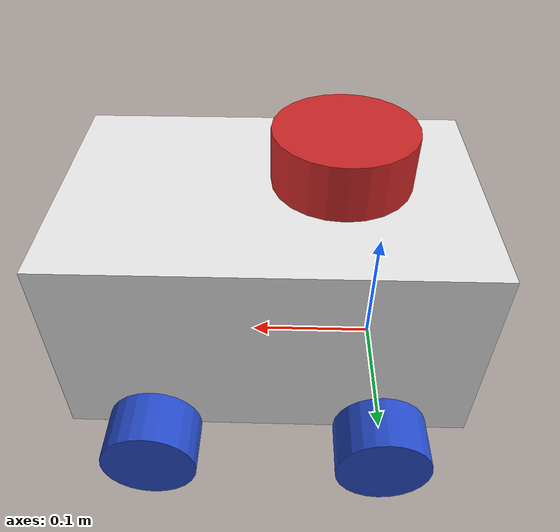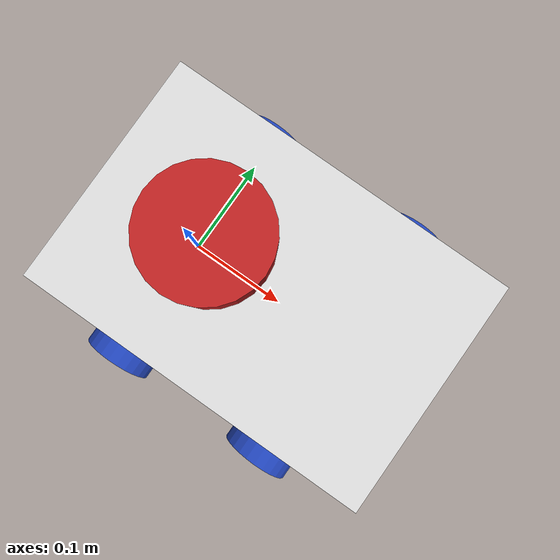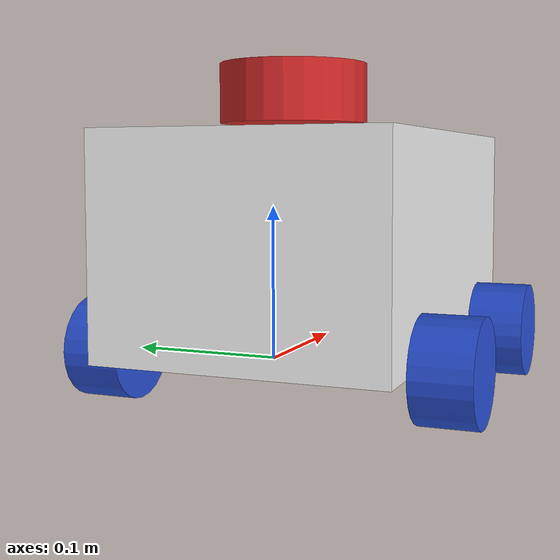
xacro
<?xml version="1.0"?>
<robot xmlns:xacro="http://www.ros.org/wiki/xacro"  name="robot">

    <!-- Example link -->
    <xacro:include filename="properties.xacro"/>
    <xacro:include filename="robot_core.xacro"/>
    <xacro:include filename="inertial_macros.xacro"/>
    <xacro:include filename="lidar.xacro"/>
    <xacro:include filename="ros2_control.xacro"/>
</robot>

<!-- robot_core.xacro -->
<robot xmlns:xacro="http://www.ros.org/wiki/xacro">

    <!-- Example link -->
    <xacro:include filename="inertial_macros.xacro"/>

    <!-- Example link -->
    <link name="base_link">
    </link>

    <joint name="base_link" type="fixed">
        <parent link="base_link"/>
        <child link="chassis"/>
        <origin xyz="-0.065 0 0"/>
    </joint>

    <!--esta huella es para el perimetro la informacion  este es mi volumen y puedo pasar -->
    <joint name="base_footprint_joint" type="fixed">
        <parent link="base_link"/>
        <child link="base_footprint"/>
        <origin xyz="0 0 -0.035"/>
    </joint>

    <link name="base_footprint">
    </link>

    <!-- chassis link -->
    <link name="chassis">
        <visual>
            <origin xyz="0.15 0 0.075"/>
            <geometry>
                <box size="0.3 0.2 0.15"/>
            </geometry>
            <material name="white"/>
        </visual>
        <collision>
            <origin xyz="0.15 0 0.075"/>
            <geometry>
                <box size="0.3 0.2 0.15"/>
            </geometry>
        </collision>
        <xacro:inertial_box mass="0.5" x="0.3" y="0.3" z="0.15">
            <origin xyz="0.15 0 0.075" rpy="0 0 0"/>
        </xacro:inertial_box>
    </link>
    <gazebo reference="chassis">
        <material>Gazebo/White</material>
    </gazebo>

    <!-- left wheel joint -->
    <joint name="left_wheel_joint" type="continuous">
        <parent link="base_link"/>
        <child link="left_wheel"/>
        <origin xyz="0 0.12 0" rpy="-${pi/2} 0 0"/>
        <axis xyz="0 0 1"/>
    </joint>

    <!-- left wheel link -->
    <link name="left_wheel">
        <visual>
            <geometry>
                <cylinder radius="0.035" length="0.04"/>
            </geometry>
            <material name="blue"/>
        </visual>
        <collision>
            <geometry>
                <sphere radius="0.035"/>
            </geometry>
        </collision>
        <xacro:inertial_cylinder mass="0.1" length="0.04" radius="0.035">
            <origin xyz="0 0.1 0" rpy="0 0 0"/>
        </xacro:inertial_cylinder>
    </link>
    <gazebo reference="left_wheel">
        <material>Gazebo/Blue</material>
    </gazebo>

    <!-- right wheel joint -->
    <joint name="right_wheel_joint" type="continuous">
        <parent link="base_link"/>
        <child link="right_wheel"/>
        <origin xyz="0 -0.12 0" rpy="${pi/2} 0 0"/>
        <axis xyz="0 0 -1"/>
    </joint>

    <!-- right wheel link -->
    <link name="right_wheel">
        <visual>
            <geometry>
                <cylinder radius="0.035" length="0.04"/>
            </geometry>
            <material name="blue"/>
        </visual>
        <collision>
            <geometry>
                <sphere radius="0.035"/>
            </geometry>
        </collision>
        <xacro:inertial_cylinder mass="0.1" length="0.04" radius="0.035">
            <origin xyz="0 0 0" rpy="0 0 0"/>
        </xacro:inertial_cylinder>
    </link>
    <gazebo reference="right_wheel">
        <material>Gazebo/Blue</material>
    </gazebo>

    <!-- front left wheel steer joint -->
    <joint name="left_wheel_steer_joint" type="revolute">
        <limit lower="-1" upper="1" effort="1" velocity="5"/>
        <parent link="chassis"/>
        <child link="left_wheel_steer"/>
        <origin xyz="0.235 0.12 0" rpy="0 0 0"/>
        <axis xyz="0 0 1"/>
    </joint>

    <!-- front left wheel steer link -->
    <link name="left_wheel_steer">
        <visual>
            <geometry>
                <cylinder radius="0.001" length="0.001"/>
            </geometry>
            <material name="blue"/>
        </visual>
        <collision>
            <geometry>
                <sphere radius="0.001"/>
            </geometry>
        </collision>
        <xacro:inertial_cylinder mass="0.001" length="0.001" radius="0.001">
            <origin xyz="0 0 0" rpy="0 0 0"/>
        </xacro:inertial_cylinder>
    </link>
    <gazebo reference="left_wheel_steer">
        <material>Gazebo/Blue</material>
    </gazebo>

    <!-- front left wheel joint -->
    <joint name="F_left_wheel_joint" type="continuous">
        <parent link="left_wheel_steer"/>
        <child link="F_left_wheel"/>
        <origin xyz="0 0 0" rpy="-${pi/2} 0 0"/>
        <axis xyz="0 0 1"/>
    </joint>

    <!-- front left wheel link -->
    <link name="F_left_wheel">
        <visual>
            <geometry>
                <cylinder radius="0.035" length="0.04"/>
            </geometry>
            <material name="blue"/>
        </visual>
        <collision>
            <geometry>
                <sphere radius="0.035"/>
            </geometry>
        </collision>
        <xacro:inertial_cylinder mass="0.1" length="0.04" radius="0.035">
            <origin xyz="0 0 0" rpy="0 0 0"/>
        </xacro:inertial_cylinder>
    </link>
    <gazebo reference="F_left_wheel">
        <material>Gazebo/Blue</material>
    </gazebo>

    <!-- front right wheel steer joint -->
    <joint name="right_wheel_steer_joint" type="revolute">
        <limit lower="-1" upper="1" effort="1" velocity="5"/>
        <parent link="chassis"/>
        <child link="right_wheel_steer"/>
        <origin xyz="0.235 -0.12 0" rpy="0 0 0"/>
        <axis xyz="0 0 1"/>
    </joint>

    <!-- front left wheel steer link -->
    <link name="right_wheel_steer">
        <visual>
            <geometry>
                <cylinder radius="0.001" length="0.001"/>
            </geometry>
            <material name="blue"/>
        </visual>
        <collision>
            <geometry>
                <sphere radius="0.001"/>
            </geometry>
        </collision>
        <xacro:inertial_cylinder mass="0.001" length="0.001" radius="0.001">
            <origin xyz="0 0 0" rpy="0 0 0"/>
        </xacro:inertial_cylinder>
    </link>
    <gazebo reference="right_wheel_steer">
        <material>Gazebo/Blue</material>
    </gazebo>

    <!-- front right wheel joint -->
    <joint name="F_right_wheel_joint" type="continuous">
        <parent link="right_wheel_steer"/>
        <child link="F_right_wheel"/>
        <origin xyz="0 0 0" rpy="${pi/2} 0 0"/>
        <axis xyz="0 0 1"/>
    </joint>

    <!-- front right wheel link -->
    <link name="F_right_wheel">
        <visual>
            <geometry>
                <cylinder radius="0.035" length="0.04"/>
            </geometry>
            <material name="blue"/>
        </visual>
        <collision>
            <geometry>
                <sphere radius="0.035"/>
            </geometry>
        </collision>
        <xacro:inertial_cylinder mass="0.1" length="0.04" radius="0.035">
            <origin xyz="0 0 0" rpy="0 0 0"/>
        </xacro:inertial_cylinder>
    </link>
    <gazebo reference="F_right_wheel">
        <material>Gazebo/Blue</material>
    </gazebo>

</robot>

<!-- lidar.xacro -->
<robot xmlns:xacro="http://www.ros.org/wiki/xacro">

    <!-- lidar joint -->
    <joint name="laser_joint" type="fixed">
        <parent link="chassis"/>
        <child link="laser_frame"/>
        <origin xyz="0.1 0 0.175" rpy="0 0 0"/>
    </joint>

    <!-- laser_frame -->
    <link name="laser_frame">
        <visual>
            <geometry>
                <cylinder radius="0.05" length="0.04"/>
            </geometry>
            <material name="red"/>
        </visual>
        <collision>
            <geometry>
                <cylinder radius="0.05" length="0.04"/>
            </geometry>
        </collision>
        <xacro:inertial_cylinder mass="0.1" length="0.04" radius="0.05">
            <origin xyz="0 0 0" rpy="0 0 0"/>
        </xacro:inertial_cylinder>
    </link>

    <gazebo reference="laser_frame">
        <material>Gazebo/Red</material>
        <sensor name="laser" type="ray">
            <pose>0 0 0 0 0 0</pose>
            <visualize>true</visualize> <!--aqui se le dice si quiero ver o no los rayos-->
            <update_rate>10</update_rate>
            <ray>
                <scan>
                    <horizontal>
                        <samples>360</samples>
                        <resolution>1</resolution>
                        <min_angle>-3.14</min_angle>
                        <max_angle>3.14</max_angle>
                    </horizontal>
                </scan>
                <range>
                    <min>0.3</min>
                    <max>12</max>
                    <resolution>0.01</resolution>
                </range>
            </ray>
            <plugin name="laser_controller" filename="libgazebo_ros_ray_sensor.so">
                <ros>
                    <argument>~/out:=scan</argument>
                </ros>
                <output_type>sensor_msgs/LaserScan</output_type>
                <frame_name>laser_frame</frame_name>
            </plugin>
        </sensor>
    </gazebo>

</robot>
